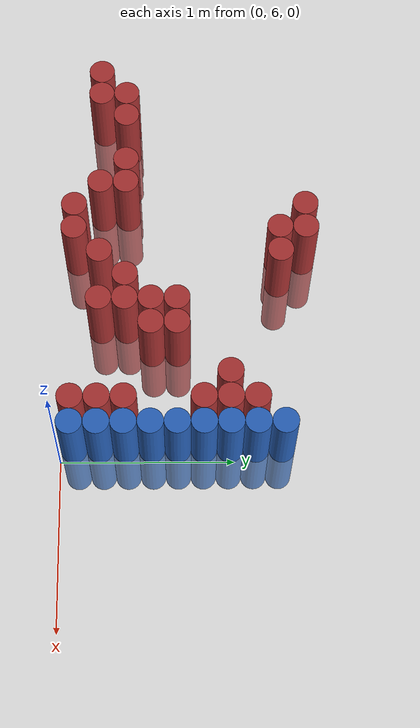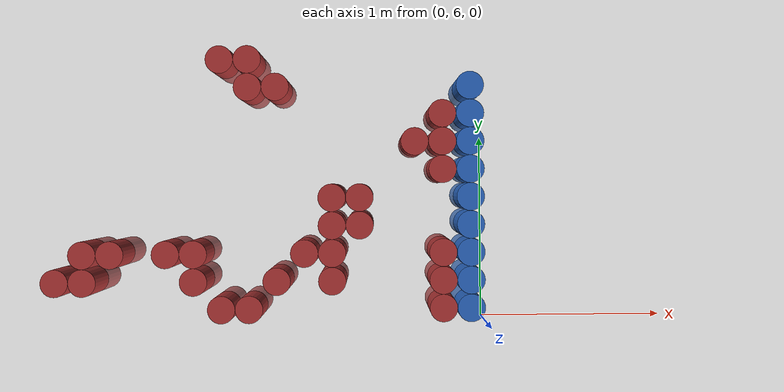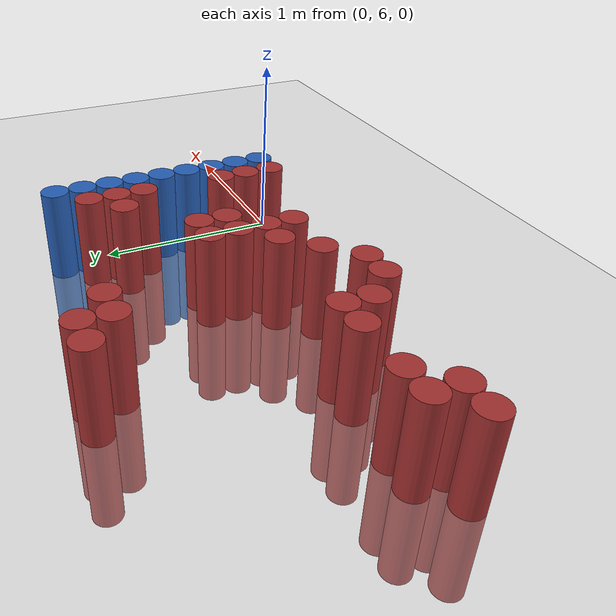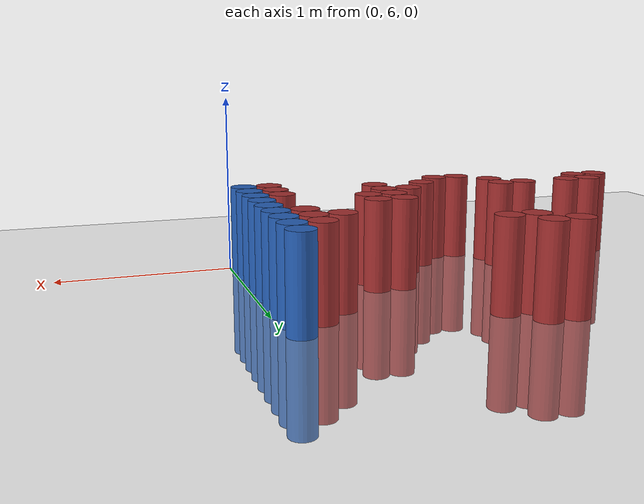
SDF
<sdf version="1.6">
 <world name="default">
  <model name="ground_plane">
   <static>1</static>
   <link name="link">
    <collision name="collision">
     <geometry><plane><normal>0 0 1</normal><size>100 100</size></plane></geometry>
     <surface><friction><ode><mu>100</mu><mu2>50</mu2></ode></friction></surface>
    </collision>
    <visual name="visual">
     <cast_shadows>0</cast_shadows>
     <geometry><plane><normal>0 0 1</normal><size>100 100</size></plane></geometry>
     <material>
      <script><uri>file://media/materials/scripts/gazebo.material</uri><name>Gazebo/Grey</name></script>
     </material>
    </visual>
   </link>
  </model>
  <model name="unit_cylinder_192">
   <static>1</static>
   <pose>-2.325000 6.225000 0.000000 0.000000 0.000000 0.000000</pose>
   <link name="link">
    <inertial>
     <mass>1</mass>
     <inertia><ixx>0.145833</ixx><ixy>0</ixy><ixz>0</ixz><iyy>0.145833</iyy><iyz>0</iyz><izz>0.125</izz></inertia>
    </inertial>
    <collision name="collision">
     <geometry><cylinder><radius>0.075000</radius><length>1</length></cylinder></geometry>
    </collision>
    <visual name="visual">
     <geometry><cylinder><radius>0.075000</radius><length>1</length></cylinder></geometry>
     <material>
      <ambient>0.648000 0.192000 0.192000 1</ambient>
      <diffuse>0.648000 0.192000 0.192000 1</diffuse>
     </material>
     <material>
      <script><name>Gazebo/Grey</name><uri>file://media/materials/scripts/gazebo.material</uri></script>
     </material>
    </visual>
    <sensor name="sensor_contact" type="contact"><contact><collision>collision</collision></contact></sensor>
   </link>
   <plugin filename="gz-sim-touchplugin-system" name="gz::sim::systems::TouchPlugin">
    <target>robot</target>
    <namespace>robot</namespace>
    <time>0.001</time>
    <enabled>true</enabled>
   </plugin>
  </model>
  <model name="unit_cylinder_198">
   <static>1</static>
   <pose>-2.175000 6.225000 0.000000 0.000000 0.000000 0.000000</pose>
   <link name="link">
    <inertial>
     <mass>1</mass>
     <inertia><ixx>0.145833</ixx><ixy>0</ixy><ixz>0</ixz><iyy>0.145833</iyy><iyz>0</iyz><izz>0.125</izz></inertia>
    </inertial>
    <collision name="collision">
     <geometry><cylinder><radius>0.075000</radius><length>1</length></cylinder></geometry>
    </collision>
    <visual name="visual">
     <geometry><cylinder><radius>0.075000</radius><length>1</length></cylinder></geometry>
     <material>
      <ambient>0.648000 0.192000 0.192000 1</ambient>
      <diffuse>0.648000 0.192000 0.192000 1</diffuse>
     </material>
     <material>
      <script><name>Gazebo/Grey</name><uri>file://media/materials/scripts/gazebo.material</uri></script>
     </material>
    </visual>
    <sensor name="sensor_contact" type="contact"><contact><collision>collision</collision></contact></sensor>
   </link>
   <plugin filename="gz-sim-touchplugin-system" name="gz::sim::systems::TouchPlugin">
    <target>robot</target>
    <namespace>robot</namespace>
    <time>0.001</time>
    <enabled>true</enabled>
   </plugin>
  </model>
  <model name="unit_cylinder_199">
   <static>1</static>
   <pose>-2.175000 6.375000 0.000000 0.000000 0.000000 0.000000</pose>
   <link name="link">
    <inertial>
     <mass>1</mass>
     <inertia><ixx>0.145833</ixx><ixy>0</ixy><ixz>0</ixz><iyy>0.145833</iyy><iyz>0</iyz><izz>0.125</izz></inertia>
    </inertial>
    <collision name="collision">
     <geometry><cylinder><radius>0.075000</radius><length>1</length></cylinder></geometry>
    </collision>
    <visual name="visual">
     <geometry><cylinder><radius>0.075000</radius><length>1</length></cylinder></geometry>
     <material>
      <ambient>0.648000 0.192000 0.192000 1</ambient>
      <diffuse>0.648000 0.192000 0.192000 1</diffuse>
     </material>
     <material>
      <script><name>Gazebo/Grey</name><uri>file://media/materials/scripts/gazebo.material</uri></script>
     </material>
    </visual>
    <sensor name="sensor_contact" type="contact"><contact><collision>collision</collision></contact></sensor>
   </link>
   <plugin filename="gz-sim-touchplugin-system" name="gz::sim::systems::TouchPlugin">
    <target>robot</target>
    <namespace>robot</namespace>
    <time>0.001</time>
    <enabled>true</enabled>
   </plugin>
  </model>
  <model name="unit_cylinder_207">
   <static>1</static>
   <pose>-2.025000 6.375000 0.000000 0.000000 0.000000 0.000000</pose>
   <link name="link">
    <inertial>
     <mass>1</mass>
     <inertia><ixx>0.145833</ixx><ixy>0</ixy><ixz>0</ixz><iyy>0.145833</iyy><iyz>0</iyz><izz>0.125</izz></inertia>
    </inertial>
    <collision name="collision">
     <geometry><cylinder><radius>0.075000</radius><length>1</length></cylinder></geometry>
    </collision>
    <visual name="visual">
     <geometry><cylinder><radius>0.075000</radius><length>1</length></cylinder></geometry>
     <material>
      <ambient>0.648000 0.192000 0.192000 1</ambient>
      <diffuse>0.648000 0.192000 0.192000 1</diffuse>
     </material>
     <material>
      <script><name>Gazebo/Grey</name><uri>file://media/materials/scripts/gazebo.material</uri></script>
     </material>
    </visual>
    <sensor name="sensor_contact" type="contact"><contact><collision>collision</collision></contact></sensor>
   </link>
   <plugin filename="gz-sim-touchplugin-system" name="gz::sim::systems::TouchPlugin">
    <target>robot</target>
    <namespace>robot</namespace>
    <time>0.001</time>
    <enabled>true</enabled>
   </plugin>
  </model>
  <model name="unit_cylinder_219">
   <static>1</static>
   <pose>-1.725000 6.375000 0.000000 0.000000 0.000000 0.000000</pose>
   <link name="link">
    <inertial>
     <mass>1</mass>
     <inertia><ixx>0.145833</ixx><ixy>0</ixy><ixz>0</ixz><iyy>0.145833</iyy><iyz>0</iyz><izz>0.125</izz></inertia>
    </inertial>
    <collision name="collision">
     <geometry><cylinder><radius>0.075000</radius><length>1</length></cylinder></geometry>
    </collision>
    <visual name="visual">
     <geometry><cylinder><radius>0.075000</radius><length>1</length></cylinder></geometry>
     <material>
      <ambient>0.648000 0.192000 0.192000 1</ambient>
      <diffuse>0.648000 0.192000 0.192000 1</diffuse>
     </material>
     <material>
      <script><name>Gazebo/Grey</name><uri>file://media/materials/scripts/gazebo.material</uri></script>
     </material>
    </visual>
    <sensor name="sensor_contact" type="contact"><contact><collision>collision</collision></contact></sensor>
   </link>
   <plugin filename="gz-sim-touchplugin-system" name="gz::sim::systems::TouchPlugin">
    <target>robot</target>
    <namespace>robot</namespace>
    <time>0.001</time>
    <enabled>true</enabled>
   </plugin>
  </model>
  <model name="unit_cylinder_223">
   <static>1</static>
   <pose>-1.575000 6.225000 0.000000 0.000000 0.000000 0.000000</pose>
   <link name="link">
    <inertial>
     <mass>1</mass>
     <inertia><ixx>0.145833</ixx><ixy>0</ixy><ixz>0</ixz><iyy>0.145833</iyy><iyz>0</iyz><izz>0.125</izz></inertia>
    </inertial>
    <collision name="collision">
     <geometry><cylinder><radius>0.075000</radius><length>1</length></cylinder></geometry>
    </collision>
    <visual name="visual">
     <geometry><cylinder><radius>0.075000</radius><length>1</length></cylinder></geometry>
     <material>
      <ambient>0.648000 0.192000 0.192000 1</ambient>
      <diffuse>0.648000 0.192000 0.192000 1</diffuse>
     </material>
     <material>
      <script><name>Gazebo/Grey</name><uri>file://media/materials/scripts/gazebo.material</uri></script>
     </material>
    </visual>
    <sensor name="sensor_contact" type="contact"><contact><collision>collision</collision></contact></sensor>
   </link>
   <plugin filename="gz-sim-touchplugin-system" name="gz::sim::systems::TouchPlugin">
    <target>robot</target>
    <namespace>robot</namespace>
    <time>0.001</time>
    <enabled>true</enabled>
   </plugin>
  </model>
  <model name="unit_cylinder_224">
   <static>1</static>
   <pose>-1.575000 6.375000 0.000000 0.000000 0.000000 0.000000</pose>
   <link name="link">
    <inertial>
     <mass>1</mass>
     <inertia><ixx>0.145833</ixx><ixy>0</ixy><ixz>0</ixz><iyy>0.145833</iyy><iyz>0</iyz><izz>0.125</izz></inertia>
    </inertial>
    <collision name="collision">
     <geometry><cylinder><radius>0.075000</radius><length>1</length></cylinder></geometry>
    </collision>
    <visual name="visual">
     <geometry><cylinder><radius>0.075000</radius><length>1</length></cylinder></geometry>
     <material>
      <ambient>0.648000 0.192000 0.192000 1</ambient>
      <diffuse>0.648000 0.192000 0.192000 1</diffuse>
     </material>
     <material>
      <script><name>Gazebo/Grey</name><uri>file://media/materials/scripts/gazebo.material</uri></script>
     </material>
    </visual>
    <sensor name="sensor_contact" type="contact"><contact><collision>collision</collision></contact></sensor>
   </link>
   <plugin filename="gz-sim-touchplugin-system" name="gz::sim::systems::TouchPlugin">
    <target>robot</target>
    <namespace>robot</namespace>
    <time>0.001</time>
    <enabled>true</enabled>
   </plugin>
  </model>
  <model name="unit_cylinder_231">
   <static>1</static>
   <pose>-1.425000 6.075000 0.000000 0.000000 0.000000 0.000000</pose>
   <link name="link">
    <inertial>
     <mass>1</mass>
     <inertia><ixx>0.145833</ixx><ixy>0</ixy><ixz>0</ixz><iyy>0.145833</iyy><iyz>0</iyz><izz>0.125</izz></inertia>
    </inertial>
    <collision name="collision">
     <geometry><cylinder><radius>0.075000</radius><length>1</length></cylinder></geometry>
    </collision>
    <visual name="visual">
     <geometry><cylinder><radius>0.075000</radius><length>1</length></cylinder></geometry>
     <material>
      <ambient>0.648000 0.192000 0.192000 1</ambient>
      <diffuse>0.648000 0.192000 0.192000 1</diffuse>
     </material>
     <material>
      <script><name>Gazebo/Grey</name><uri>file://media/materials/scripts/gazebo.material</uri></script>
     </material>
    </visual>
    <sensor name="sensor_contact" type="contact"><contact><collision>collision</collision></contact></sensor>
   </link>
   <plugin filename="gz-sim-touchplugin-system" name="gz::sim::systems::TouchPlugin">
    <target>robot</target>
    <namespace>robot</namespace>
    <time>0.001</time>
    <enabled>true</enabled>
   </plugin>
  </model>
  <model name="unit_cylinder_232">
   <static>1</static>
   <pose>-1.425000 7.425000 0.000000 0.000000 0.000000 0.000000</pose>
   <link name="link">
    <inertial>
     <mass>1</mass>
     <inertia><ixx>0.145833</ixx><ixy>0</ixy><ixz>0</ixz><iyy>0.145833</iyy><iyz>0</iyz><izz>0.125</izz></inertia>
    </inertial>
    <collision name="collision">
     <geometry><cylinder><radius>0.075000</radius><length>1</length></cylinder></geometry>
    </collision>
    <visual name="visual">
     <geometry><cylinder><radius>0.075000</radius><length>1</length></cylinder></geometry>
     <material>
      <ambient>0.648000 0.192000 0.192000 1</ambient>
      <diffuse>0.648000 0.192000 0.192000 1</diffuse>
     </material>
     <material>
      <script><name>Gazebo/Grey</name><uri>file://media/materials/scripts/gazebo.material</uri></script>
     </material>
    </visual>
    <sensor name="sensor_contact" type="contact"><contact><collision>collision</collision></contact></sensor>
   </link>
   <plugin filename="gz-sim-touchplugin-system" name="gz::sim::systems::TouchPlugin">
    <target>robot</target>
    <namespace>robot</namespace>
    <time>0.001</time>
    <enabled>true</enabled>
   </plugin>
  </model>
  <model name="unit_cylinder_236">
   <static>1</static>
   <pose>-1.275000 6.075000 0.000000 0.000000 0.000000 0.000000</pose>
   <link name="link">
    <inertial>
     <mass>1</mass>
     <inertia><ixx>0.145833</ixx><ixy>0</ixy><ixz>0</ixz><iyy>0.145833</iyy><iyz>0</iyz><izz>0.125</izz></inertia>
    </inertial>
    <collision name="collision">
     <geometry><cylinder><radius>0.075000</radius><length>1</length></cylinder></geometry>
    </collision>
    <visual name="visual">
     <geometry><cylinder><radius>0.075000</radius><length>1</length></cylinder></geometry>
     <material>
      <ambient>0.648000 0.192000 0.192000 1</ambient>
      <diffuse>0.648000 0.192000 0.192000 1</diffuse>
     </material>
     <material>
      <script><name>Gazebo/Grey</name><uri>file://media/materials/scripts/gazebo.material</uri></script>
     </material>
    </visual>
    <sensor name="sensor_contact" type="contact"><contact><collision>collision</collision></contact></sensor>
   </link>
   <plugin filename="gz-sim-touchplugin-system" name="gz::sim::systems::TouchPlugin">
    <target>robot</target>
    <namespace>robot</namespace>
    <time>0.001</time>
    <enabled>true</enabled>
   </plugin>
  </model>
  <model name="unit_cylinder_237">
   <static>1</static>
   <pose>-1.275000 7.275000 0.000000 0.000000 0.000000 0.000000</pose>
   <link name="link">
    <inertial>
     <mass>1</mass>
     <inertia><ixx>0.145833</ixx><ixy>0</ixy><ixz>0</ixz><iyy>0.145833</iyy><iyz>0</iyz><izz>0.125</izz></inertia>
    </inertial>
    <collision name="collision">
     <geometry><cylinder><radius>0.075000</radius><length>1</length></cylinder></geometry>
    </collision>
    <visual name="visual">
     <geometry><cylinder><radius>0.075000</radius><length>1</length></cylinder></geometry>
     <material>
      <ambient>0.648000 0.192000 0.192000 1</ambient>
      <diffuse>0.648000 0.192000 0.192000 1</diffuse>
     </material>
     <material>
      <script><name>Gazebo/Grey</name><uri>file://media/materials/scripts/gazebo.material</uri></script>
     </material>
    </visual>
    <sensor name="sensor_contact" type="contact"><contact><collision>collision</collision></contact></sensor>
   </link>
   <plugin filename="gz-sim-touchplugin-system" name="gz::sim::systems::TouchPlugin">
    <target>robot</target>
    <namespace>robot</namespace>
    <time>0.001</time>
    <enabled>true</enabled>
   </plugin>
  </model>
  <model name="unit_cylinder_238">
   <static>1</static>
   <pose>-1.275000 7.425000 0.000000 0.000000 0.000000 0.000000</pose>
   <link name="link">
    <inertial>
     <mass>1</mass>
     <inertia><ixx>0.145833</ixx><ixy>0</ixy><ixz>0</ixz><iyy>0.145833</iyy><iyz>0</iyz><izz>0.125</izz></inertia>
    </inertial>
    <collision name="collision">
     <geometry><cylinder><radius>0.075000</radius><length>1</length></cylinder></geometry>
    </collision>
    <visual name="visual">
     <geometry><cylinder><radius>0.075000</radius><length>1</length></cylinder></geometry>
     <material>
      <ambient>0.648000 0.192000 0.192000 1</ambient>
      <diffuse>0.648000 0.192000 0.192000 1</diffuse>
     </material>
     <material>
      <script><name>Gazebo/Grey</name><uri>file://media/materials/scripts/gazebo.material</uri></script>
     </material>
    </visual>
    <sensor name="sensor_contact" type="contact"><contact><collision>collision</collision></contact></sensor>
   </link>
   <plugin filename="gz-sim-touchplugin-system" name="gz::sim::systems::TouchPlugin">
    <target>robot</target>
    <namespace>robot</namespace>
    <time>0.001</time>
    <enabled>true</enabled>
   </plugin>
  </model>
  <model name="unit_cylinder_249">
   <static>1</static>
   <pose>-1.125000 6.225000 0.000000 0.000000 0.000000 0.000000</pose>
   <link name="link">
    <inertial>
     <mass>1</mass>
     <inertia><ixx>0.145833</ixx><ixy>0</ixy><ixz>0</ixz><iyy>0.145833</iyy><iyz>0</iyz><izz>0.125</izz></inertia>
    </inertial>
    <collision name="collision">
     <geometry><cylinder><radius>0.075000</radius><length>1</length></cylinder></geometry>
    </collision>
    <visual name="visual">
     <geometry><cylinder><radius>0.075000</radius><length>1</length></cylinder></geometry>
     <material>
      <ambient>0.648000 0.192000 0.192000 1</ambient>
      <diffuse>0.648000 0.192000 0.192000 1</diffuse>
     </material>
     <material>
      <script><name>Gazebo/Grey</name><uri>file://media/materials/scripts/gazebo.material</uri></script>
     </material>
    </visual>
    <sensor name="sensor_contact" type="contact"><contact><collision>collision</collision></contact></sensor>
   </link>
   <plugin filename="gz-sim-touchplugin-system" name="gz::sim::systems::TouchPlugin">
    <target>robot</target>
    <namespace>robot</namespace>
    <time>0.001</time>
    <enabled>true</enabled>
   </plugin>
  </model>
  <model name="unit_cylinder_250">
   <static>1</static>
   <pose>-1.125000 7.275000 0.000000 0.000000 0.000000 0.000000</pose>
   <link name="link">
    <inertial>
     <mass>1</mass>
     <inertia><ixx>0.145833</ixx><ixy>0</ixy><ixz>0</ixz><iyy>0.145833</iyy><iyz>0</iyz><izz>0.125</izz></inertia>
    </inertial>
    <collision name="collision">
     <geometry><cylinder><radius>0.075000</radius><length>1</length></cylinder></geometry>
    </collision>
    <visual name="visual">
     <geometry><cylinder><radius>0.075000</radius><length>1</length></cylinder></geometry>
     <material>
      <ambient>0.648000 0.192000 0.192000 1</ambient>
      <diffuse>0.648000 0.192000 0.192000 1</diffuse>
     </material>
     <material>
      <script><name>Gazebo/Grey</name><uri>file://media/materials/scripts/gazebo.material</uri></script>
     </material>
    </visual>
    <sensor name="sensor_contact" type="contact"><contact><collision>collision</collision></contact></sensor>
   </link>
   <plugin filename="gz-sim-touchplugin-system" name="gz::sim::systems::TouchPlugin">
    <target>robot</target>
    <namespace>robot</namespace>
    <time>0.001</time>
    <enabled>true</enabled>
   </plugin>
  </model>
  <model name="unit_cylinder_263">
   <static>1</static>
   <pose>-0.975000 6.375000 0.000000 0.000000 0.000000 0.000000</pose>
   <link name="link">
    <inertial>
     <mass>1</mass>
     <inertia><ixx>0.145833</ixx><ixy>0</ixy><ixz>0</ixz><iyy>0.145833</iyy><iyz>0</iyz><izz>0.125</izz></inertia>
    </inertial>
    <collision name="collision">
     <geometry><cylinder><radius>0.075000</radius><length>1</length></cylinder></geometry>
    </collision>
    <visual name="visual">
     <geometry><cylinder><radius>0.075000</radius><length>1</length></cylinder></geometry>
     <material>
      <ambient>0.648000 0.192000 0.192000 1</ambient>
      <diffuse>0.648000 0.192000 0.192000 1</diffuse>
     </material>
     <material>
      <script><name>Gazebo/Grey</name><uri>file://media/materials/scripts/gazebo.material</uri></script>
     </material>
    </visual>
    <sensor name="sensor_contact" type="contact"><contact><collision>collision</collision></contact></sensor>
   </link>
   <plugin filename="gz-sim-touchplugin-system" name="gz::sim::systems::TouchPlugin">
    <target>robot</target>
    <namespace>robot</namespace>
    <time>0.001</time>
    <enabled>true</enabled>
   </plugin>
  </model>
  <model name="unit_cylinder_271">
   <static>1</static>
   <pose>-0.825000 6.225000 0.000000 0.000000 0.000000 0.000000</pose>
   <link name="link">
    <inertial>
     <mass>1</mass>
     <inertia><ixx>0.145833</ixx><ixy>0</ixy><ixz>0</ixz><iyy>0.145833</iyy><iyz>0</iyz><izz>0.125</izz></inertia>
    </inertial>
    <collision name="collision">
     <geometry><cylinder><radius>0.075000</radius><length>1</length></cylinder></geometry>
    </collision>
    <visual name="visual">
     <geometry><cylinder><radius>0.075000</radius><length>1</length></cylinder></geometry>
     <material>
      <ambient>0.648000 0.192000 0.192000 1</ambient>
      <diffuse>0.648000 0.192000 0.192000 1</diffuse>
     </material>
     <material>
      <script><name>Gazebo/Grey</name><uri>file://media/materials/scripts/gazebo.material</uri></script>
     </material>
    </visual>
    <sensor name="sensor_contact" type="contact"><contact><collision>collision</collision></contact></sensor>
   </link>
   <plugin filename="gz-sim-touchplugin-system" name="gz::sim::systems::TouchPlugin">
    <target>robot</target>
    <namespace>robot</namespace>
    <time>0.001</time>
    <enabled>true</enabled>
   </plugin>
  </model>
  <model name="unit_cylinder_272">
   <static>1</static>
   <pose>-0.825000 6.375000 0.000000 0.000000 0.000000 0.000000</pose>
   <link name="link">
    <inertial>
     <mass>1</mass>
     <inertia><ixx>0.145833</ixx><ixy>0</ixy><ixz>0</ixz><iyy>0.145833</iyy><iyz>0</iyz><izz>0.125</izz></inertia>
    </inertial>
    <collision name="collision">
     <geometry><cylinder><radius>0.075000</radius><length>1</length></cylinder></geometry>
    </collision>
    <visual name="visual">
     <geometry><cylinder><radius>0.075000</radius><length>1</length></cylinder></geometry>
     <material>
      <ambient>0.648000 0.192000 0.192000 1</ambient>
      <diffuse>0.648000 0.192000 0.192000 1</diffuse>
     </material>
     <material>
      <script><name>Gazebo/Grey</name><uri>file://media/materials/scripts/gazebo.material</uri></script>
     </material>
    </visual>
    <sensor name="sensor_contact" type="contact"><contact><collision>collision</collision></contact></sensor>
   </link>
   <plugin filename="gz-sim-touchplugin-system" name="gz::sim::systems::TouchPlugin">
    <target>robot</target>
    <namespace>robot</namespace>
    <time>0.001</time>
    <enabled>true</enabled>
   </plugin>
  </model>
  <model name="unit_cylinder_273">
   <static>1</static>
   <pose>-0.825000 6.525000 0.000000 0.000000 0.000000 0.000000</pose>
   <link name="link">
    <inertial>
     <mass>1</mass>
     <inertia><ixx>0.145833</ixx><ixy>0</ixy><ixz>0</ixz><iyy>0.145833</iyy><iyz>0</iyz><izz>0.125</izz></inertia>
    </inertial>
    <collision name="collision">
     <geometry><cylinder><radius>0.075000</radius><length>1</length></cylinder></geometry>
    </collision>
    <visual name="visual">
     <geometry><cylinder><radius>0.075000</radius><length>1</length></cylinder></geometry>
     <material>
      <ambient>0.648000 0.192000 0.192000 1</ambient>
      <diffuse>0.648000 0.192000 0.192000 1</diffuse>
     </material>
     <material>
      <script><name>Gazebo/Grey</name><uri>file://media/materials/scripts/gazebo.material</uri></script>
     </material>
    </visual>
    <sensor name="sensor_contact" type="contact"><contact><collision>collision</collision></contact></sensor>
   </link>
   <plugin filename="gz-sim-touchplugin-system" name="gz::sim::systems::TouchPlugin">
    <target>robot</target>
    <namespace>robot</namespace>
    <time>0.001</time>
    <enabled>true</enabled>
   </plugin>
  </model>
  <model name="unit_cylinder_274">
   <static>1</static>
   <pose>-0.825000 6.675000 0.000000 0.000000 0.000000 0.000000</pose>
   <link name="link">
    <inertial>
     <mass>1</mass>
     <inertia><ixx>0.145833</ixx><ixy>0</ixy><ixz>0</ixz><iyy>0.145833</iyy><iyz>0</iyz><izz>0.125</izz></inertia>
    </inertial>
    <collision name="collision">
     <geometry><cylinder><radius>0.075000</radius><length>1</length></cylinder></geometry>
    </collision>
    <visual name="visual">
     <geometry><cylinder><radius>0.075000</radius><length>1</length></cylinder></geometry>
     <material>
      <ambient>0.648000 0.192000 0.192000 1</ambient>
      <diffuse>0.648000 0.192000 0.192000 1</diffuse>
     </material>
     <material>
      <script><name>Gazebo/Grey</name><uri>file://media/materials/scripts/gazebo.material</uri></script>
     </material>
    </visual>
    <sensor name="sensor_contact" type="contact"><contact><collision>collision</collision></contact></sensor>
   </link>
   <plugin filename="gz-sim-touchplugin-system" name="gz::sim::systems::TouchPlugin">
    <target>robot</target>
    <namespace>robot</namespace>
    <time>0.001</time>
    <enabled>true</enabled>
   </plugin>
  </model>
  <model name="unit_cylinder_277">
   <static>1</static>
   <pose>-0.675000 6.525000 0.000000 0.000000 0.000000 0.000000</pose>
   <link name="link">
    <inertial>
     <mass>1</mass>
     <inertia><ixx>0.145833</ixx><ixy>0</ixy><ixz>0</ixz><iyy>0.145833</iyy><iyz>0</iyz><izz>0.125</izz></inertia>
    </inertial>
    <collision name="collision">
     <geometry><cylinder><radius>0.075000</radius><length>1</length></cylinder></geometry>
    </collision>
    <visual name="visual">
     <geometry><cylinder><radius>0.075000</radius><length>1</length></cylinder></geometry>
     <material>
      <ambient>0.648000 0.192000 0.192000 1</ambient>
      <diffuse>0.648000 0.192000 0.192000 1</diffuse>
     </material>
     <material>
      <script><name>Gazebo/Grey</name><uri>file://media/materials/scripts/gazebo.material</uri></script>
     </material>
    </visual>
    <sensor name="sensor_contact" type="contact"><contact><collision>collision</collision></contact></sensor>
   </link>
   <plugin filename="gz-sim-touchplugin-system" name="gz::sim::systems::TouchPlugin">
    <target>robot</target>
    <namespace>robot</namespace>
    <time>0.001</time>
    <enabled>true</enabled>
   </plugin>
  </model>
  <model name="unit_cylinder_278">
   <static>1</static>
   <pose>-0.675000 6.675000 0.000000 0.000000 0.000000 0.000000</pose>
   <link name="link">
    <inertial>
     <mass>1</mass>
     <inertia><ixx>0.145833</ixx><ixy>0</ixy><ixz>0</ixz><iyy>0.145833</iyy><iyz>0</iyz><izz>0.125</izz></inertia>
    </inertial>
    <collision name="collision">
     <geometry><cylinder><radius>0.075000</radius><length>1</length></cylinder></geometry>
    </collision>
    <visual name="visual">
     <geometry><cylinder><radius>0.075000</radius><length>1</length></cylinder></geometry>
     <material>
      <ambient>0.648000 0.192000 0.192000 1</ambient>
      <diffuse>0.648000 0.192000 0.192000 1</diffuse>
     </material>
     <material>
      <script><name>Gazebo/Grey</name><uri>file://media/materials/scripts/gazebo.material</uri></script>
     </material>
    </visual>
    <sensor name="sensor_contact" type="contact"><contact><collision>collision</collision></contact></sensor>
   </link>
   <plugin filename="gz-sim-touchplugin-system" name="gz::sim::systems::TouchPlugin">
    <target>robot</target>
    <namespace>robot</namespace>
    <time>0.001</time>
    <enabled>true</enabled>
   </plugin>
  </model>
  <model name="unit_cylinder_281">
   <static>1</static>
   <pose>-0.375000 6.975000 0.000000 0.000000 0.000000 0.000000</pose>
   <link name="link">
    <inertial>
     <mass>1</mass>
     <inertia><ixx>0.145833</ixx><ixy>0</ixy><ixz>0</ixz><iyy>0.145833</iyy><iyz>0</iyz><izz>0.125</izz></inertia>
    </inertial>
    <collision name="collision">
     <geometry><cylinder><radius>0.075000</radius><length>1</length></cylinder></geometry>
    </collision>
    <visual name="visual">
     <geometry><cylinder><radius>0.075000</radius><length>1</length></cylinder></geometry>
     <material>
      <ambient>0.648000 0.192000 0.192000 1</ambient>
      <diffuse>0.648000 0.192000 0.192000 1</diffuse>
     </material>
     <material>
      <script><name>Gazebo/Grey</name><uri>file://media/materials/scripts/gazebo.material</uri></script>
     </material>
    </visual>
    <sensor name="sensor_contact" type="contact"><contact><collision>collision</collision></contact></sensor>
   </link>
   <plugin filename="gz-sim-touchplugin-system" name="gz::sim::systems::TouchPlugin">
    <target>robot</target>
    <namespace>robot</namespace>
    <time>0.001</time>
    <enabled>true</enabled>
   </plugin>
  </model>
  <model name="unit_cylinder_291">
   <static>1</static>
   <pose>-0.225000 6.075000 0.000000 0.000000 0.000000 0.000000</pose>
   <link name="link">
    <inertial>
     <mass>1</mass>
     <inertia><ixx>0.145833</ixx><ixy>0</ixy><ixz>0</ixz><iyy>0.145833</iyy><iyz>0</iyz><izz>0.125</izz></inertia>
    </inertial>
    <collision name="collision">
     <geometry><cylinder><radius>0.075000</radius><length>1</length></cylinder></geometry>
    </collision>
    <visual name="visual">
     <geometry><cylinder><radius>0.075000</radius><length>1</length></cylinder></geometry>
     <material>
      <ambient>0.648000 0.192000 0.192000 1</ambient>
      <diffuse>0.648000 0.192000 0.192000 1</diffuse>
     </material>
     <material>
      <script><name>Gazebo/Grey</name><uri>file://media/materials/scripts/gazebo.material</uri></script>
     </material>
    </visual>
    <sensor name="sensor_contact" type="contact"><contact><collision>collision</collision></contact></sensor>
   </link>
   <plugin filename="gz-sim-touchplugin-system" name="gz::sim::systems::TouchPlugin">
    <target>robot</target>
    <namespace>robot</namespace>
    <time>0.001</time>
    <enabled>true</enabled>
   </plugin>
  </model>
  <model name="unit_cylinder_292">
   <static>1</static>
   <pose>-0.225000 6.225000 0.000000 0.000000 0.000000 0.000000</pose>
   <link name="link">
    <inertial>
     <mass>1</mass>
     <inertia><ixx>0.145833</ixx><ixy>0</ixy><ixz>0</ixz><iyy>0.145833</iyy><iyz>0</iyz><izz>0.125</izz></inertia>
    </inertial>
    <collision name="collision">
     <geometry><cylinder><radius>0.075000</radius><length>1</length></cylinder></geometry>
    </collision>
    <visual name="visual">
     <geometry><cylinder><radius>0.075000</radius><length>1</length></cylinder></geometry>
     <material>
      <ambient>0.648000 0.192000 0.192000 1</ambient>
      <diffuse>0.648000 0.192000 0.192000 1</diffuse>
     </material>
     <material>
      <script><name>Gazebo/Grey</name><uri>file://media/materials/scripts/gazebo.material</uri></script>
     </material>
    </visual>
    <sensor name="sensor_contact" type="contact"><contact><collision>collision</collision></contact></sensor>
   </link>
   <plugin filename="gz-sim-touchplugin-system" name="gz::sim::systems::TouchPlugin">
    <target>robot</target>
    <namespace>robot</namespace>
    <time>0.001</time>
    <enabled>true</enabled>
   </plugin>
  </model>
  <model name="unit_cylinder_293">
   <static>1</static>
   <pose>-0.225000 6.375000 0.000000 0.000000 0.000000 0.000000</pose>
   <link name="link">
    <inertial>
     <mass>1</mass>
     <inertia><ixx>0.145833</ixx><ixy>0</ixy><ixz>0</ixz><iyy>0.145833</iyy><iyz>0</iyz><izz>0.125</izz></inertia>
    </inertial>
    <collision name="collision">
     <geometry><cylinder><radius>0.075000</radius><length>1</length></cylinder></geometry>
    </collision>
    <visual name="visual">
     <geometry><cylinder><radius>0.075000</radius><length>1</length></cylinder></geometry>
     <material>
      <ambient>0.648000 0.192000 0.192000 1</ambient>
      <diffuse>0.648000 0.192000 0.192000 1</diffuse>
     </material>
     <material>
      <script><name>Gazebo/Grey</name><uri>file://media/materials/scripts/gazebo.material</uri></script>
     </material>
    </visual>
    <sensor name="sensor_contact" type="contact"><contact><collision>collision</collision></contact></sensor>
   </link>
   <plugin filename="gz-sim-touchplugin-system" name="gz::sim::systems::TouchPlugin">
    <target>robot</target>
    <namespace>robot</namespace>
    <time>0.001</time>
    <enabled>true</enabled>
   </plugin>
  </model>
  <model name="unit_cylinder_294">
   <static>1</static>
   <pose>-0.225000 6.825000 0.000000 0.000000 0.000000 0.000000</pose>
   <link name="link">
    <inertial>
     <mass>1</mass>
     <inertia><ixx>0.145833</ixx><ixy>0</ixy><ixz>0</ixz><iyy>0.145833</iyy><iyz>0</iyz><izz>0.125</izz></inertia>
    </inertial>
    <collision name="collision">
     <geometry><cylinder><radius>0.075000</radius><length>1</length></cylinder></geometry>
    </collision>
    <visual name="visual">
     <geometry><cylinder><radius>0.075000</radius><length>1</length></cylinder></geometry>
     <material>
      <ambient>0.648000 0.192000 0.192000 1</ambient>
      <diffuse>0.648000 0.192000 0.192000 1</diffuse>
     </material>
     <material>
      <script><name>Gazebo/Grey</name><uri>file://media/materials/scripts/gazebo.material</uri></script>
     </material>
    </visual>
    <sensor name="sensor_contact" type="contact"><contact><collision>collision</collision></contact></sensor>
   </link>
   <plugin filename="gz-sim-touchplugin-system" name="gz::sim::systems::TouchPlugin">
    <target>robot</target>
    <namespace>robot</namespace>
    <time>0.001</time>
    <enabled>true</enabled>
   </plugin>
  </model>
  <model name="unit_cylinder_295">
   <static>1</static>
   <pose>-0.225000 6.975000 0.000000 0.000000 0.000000 0.000000</pose>
   <link name="link">
    <inertial>
     <mass>1</mass>
     <inertia><ixx>0.145833</ixx><ixy>0</ixy><ixz>0</ixz><iyy>0.145833</iyy><iyz>0</iyz><izz>0.125</izz></inertia>
    </inertial>
    <collision name="collision">
     <geometry><cylinder><radius>0.075000</radius><length>1</length></cylinder></geometry>
    </collision>
    <visual name="visual">
     <geometry><cylinder><radius>0.075000</radius><length>1</length></cylinder></geometry>
     <material>
      <ambient>0.648000 0.192000 0.192000 1</ambient>
      <diffuse>0.648000 0.192000 0.192000 1</diffuse>
     </material>
     <material>
      <script><name>Gazebo/Grey</name><uri>file://media/materials/scripts/gazebo.material</uri></script>
     </material>
    </visual>
    <sensor name="sensor_contact" type="contact"><contact><collision>collision</collision></contact></sensor>
   </link>
   <plugin filename="gz-sim-touchplugin-system" name="gz::sim::systems::TouchPlugin">
    <target>robot</target>
    <namespace>robot</namespace>
    <time>0.001</time>
    <enabled>true</enabled>
   </plugin>
  </model>
  <model name="unit_cylinder_296">
   <static>1</static>
   <pose>-0.225000 7.125000 0.000000 0.000000 0.000000 0.000000</pose>
   <link name="link">
    <inertial>
     <mass>1</mass>
     <inertia><ixx>0.145833</ixx><ixy>0</ixy><ixz>0</ixz><iyy>0.145833</iyy><iyz>0</iyz><izz>0.125</izz></inertia>
    </inertial>
    <collision name="collision">
     <geometry><cylinder><radius>0.075000</radius><length>1</length></cylinder></geometry>
    </collision>
    <visual name="visual">
     <geometry><cylinder><radius>0.075000</radius><length>1</length></cylinder></geometry>
     <material>
      <ambient>0.648000 0.192000 0.192000 1</ambient>
      <diffuse>0.648000 0.192000 0.192000 1</diffuse>
     </material>
     <material>
      <script><name>Gazebo/Grey</name><uri>file://media/materials/scripts/gazebo.material</uri></script>
     </material>
    </visual>
    <sensor name="sensor_contact" type="contact"><contact><collision>collision</collision></contact></sensor>
   </link>
   <plugin filename="gz-sim-touchplugin-system" name="gz::sim::systems::TouchPlugin">
    <target>robot</target>
    <namespace>robot</namespace>
    <time>0.001</time>
    <enabled>true</enabled>
   </plugin>
  </model>
  <model name="unit_cylinder_312">
   <static>1</static>
   <pose>-0.075000 6.075000 0.000000 0.000000 0.000000 0.000000</pose>
   <link name="link">
    <inertial>
     <mass>1</mass>
     <inertia><ixx>0.145833</ixx><ixy>0</ixy><ixz>0</ixz><iyy>0.145833</iyy><iyz>0</iyz><izz>0.125</izz></inertia>
    </inertial>
    <collision name="collision">
     <geometry><cylinder><radius>0.075000</radius><length>1</length></cylinder></geometry>
    </collision>
    <visual name="visual">
     <geometry><cylinder><radius>0.075000</radius><length>1</length></cylinder></geometry>
     <material>
      <ambient>0.152000 0.379000 0.720000 1</ambient>
      <diffuse>0.152000 0.379000 0.720000 1</diffuse>
     </material>
     <material>
      <script><name>Gazebo/Grey</name><uri>file://media/materials/scripts/gazebo.material</uri></script>
     </material>
    </visual>
    <sensor name="sensor_contact" type="contact"><contact><collision>collision</collision></contact></sensor>
   </link>
   <plugin filename="gz-sim-touchplugin-system" name="gz::sim::systems::TouchPlugin">
    <target>robot</target>
    <namespace>robot</namespace>
    <time>0.001</time>
    <enabled>true</enabled>
   </plugin>
  </model>
  <model name="unit_cylinder_313">
   <static>1</static>
   <pose>-0.075000 6.225000 0.000000 0.000000 0.000000 0.000000</pose>
   <link name="link">
    <inertial>
     <mass>1</mass>
     <inertia><ixx>0.145833</ixx><ixy>0</ixy><ixz>0</ixz><iyy>0.145833</iyy><iyz>0</iyz><izz>0.125</izz></inertia>
    </inertial>
    <collision name="collision">
     <geometry><cylinder><radius>0.075000</radius><length>1</length></cylinder></geometry>
    </collision>
    <visual name="visual">
     <geometry><cylinder><radius>0.075000</radius><length>1</length></cylinder></geometry>
     <material>
      <ambient>0.152000 0.379000 0.720000 1</ambient>
      <diffuse>0.152000 0.379000 0.720000 1</diffuse>
     </material>
     <material>
      <script><name>Gazebo/Grey</name><uri>file://media/materials/scripts/gazebo.material</uri></script>
     </material>
    </visual>
    <sensor name="sensor_contact" type="contact"><contact><collision>collision</collision></contact></sensor>
   </link>
   <plugin filename="gz-sim-touchplugin-system" name="gz::sim::systems::TouchPlugin">
    <target>robot</target>
    <namespace>robot</namespace>
    <time>0.001</time>
    <enabled>true</enabled>
   </plugin>
  </model>
  <model name="unit_cylinder_314">
   <static>1</static>
   <pose>-0.075000 6.375000 0.000000 0.000000 0.000000 0.000000</pose>
   <link name="link">
    <inertial>
     <mass>1</mass>
     <inertia><ixx>0.145833</ixx><ixy>0</ixy><ixz>0</ixz><iyy>0.145833</iyy><iyz>0</iyz><izz>0.125</izz></inertia>
    </inertial>
    <collision name="collision">
     <geometry><cylinder><radius>0.075000</radius><length>1</length></cylinder></geometry>
    </collision>
    <visual name="visual">
     <geometry><cylinder><radius>0.075000</radius><length>1</length></cylinder></geometry>
     <material>
      <ambient>0.152000 0.379000 0.720000 1</ambient>
      <diffuse>0.152000 0.379000 0.720000 1</diffuse>
     </material>
     <material>
      <script><name>Gazebo/Grey</name><uri>file://media/materials/scripts/gazebo.material</uri></script>
     </material>
    </visual>
    <sensor name="sensor_contact" type="contact"><contact><collision>collision</collision></contact></sensor>
   </link>
   <plugin filename="gz-sim-touchplugin-system" name="gz::sim::systems::TouchPlugin">
    <target>robot</target>
    <namespace>robot</namespace>
    <time>0.001</time>
    <enabled>true</enabled>
   </plugin>
  </model>
  <model name="unit_cylinder_315">
   <static>1</static>
   <pose>-0.075000 6.525000 0.000000 0.000000 0.000000 0.000000</pose>
   <link name="link">
    <inertial>
     <mass>1</mass>
     <inertia><ixx>0.145833</ixx><ixy>0</ixy><ixz>0</ixz><iyy>0.145833</iyy><iyz>0</iyz><izz>0.125</izz></inertia>
    </inertial>
    <collision name="collision">
     <geometry><cylinder><radius>0.075000</radius><length>1</length></cylinder></geometry>
    </collision>
    <visual name="visual">
     <geometry><cylinder><radius>0.075000</radius><length>1</length></cylinder></geometry>
     <material>
      <ambient>0.152000 0.379000 0.720000 1</ambient>
      <diffuse>0.152000 0.379000 0.720000 1</diffuse>
     </material>
     <material>
      <script><name>Gazebo/Grey</name><uri>file://media/materials/scripts/gazebo.material</uri></script>
     </material>
    </visual>
    <sensor name="sensor_contact" type="contact"><contact><collision>collision</collision></contact></sensor>
   </link>
   <plugin filename="gz-sim-touchplugin-system" name="gz::sim::systems::TouchPlugin">
    <target>robot</target>
    <namespace>robot</namespace>
    <time>0.001</time>
    <enabled>true</enabled>
   </plugin>
  </model>
  <model name="unit_cylinder_316">
   <static>1</static>
   <pose>-0.075000 6.675000 0.000000 0.000000 0.000000 0.000000</pose>
   <link name="link">
    <inertial>
     <mass>1</mass>
     <inertia><ixx>0.145833</ixx><ixy>0</ixy><ixz>0</ixz><iyy>0.145833</iyy><iyz>0</iyz><izz>0.125</izz></inertia>
    </inertial>
    <collision name="collision">
     <geometry><cylinder><radius>0.075000</radius><length>1</length></cylinder></geometry>
    </collision>
    <visual name="visual">
     <geometry><cylinder><radius>0.075000</radius><length>1</length></cylinder></geometry>
     <material>
      <ambient>0.152000 0.379000 0.720000 1</ambient>
      <diffuse>0.152000 0.379000 0.720000 1</diffuse>
     </material>
     <material>
      <script><name>Gazebo/Grey</name><uri>file://media/materials/scripts/gazebo.material</uri></script>
     </material>
    </visual>
    <sensor name="sensor_contact" type="contact"><contact><collision>collision</collision></contact></sensor>
   </link>
   <plugin filename="gz-sim-touchplugin-system" name="gz::sim::systems::TouchPlugin">
    <target>robot</target>
    <namespace>robot</namespace>
    <time>0.001</time>
    <enabled>true</enabled>
   </plugin>
  </model>
  <model name="unit_cylinder_317">
   <static>1</static>
   <pose>-0.075000 6.825000 0.000000 0.000000 0.000000 0.000000</pose>
   <link name="link">
    <inertial>
     <mass>1</mass>
     <inertia><ixx>0.145833</ixx><ixy>0</ixy><ixz>0</ixz><iyy>0.145833</iyy><iyz>0</iyz><izz>0.125</izz></inertia>
    </inertial>
    <collision name="collision">
     <geometry><cylinder><radius>0.075000</radius><length>1</length></cylinder></geometry>
    </collision>
    <visual name="visual">
     <geometry><cylinder><radius>0.075000</radius><length>1</length></cylinder></geometry>
     <material>
      <ambient>0.152000 0.379000 0.720000 1</ambient>
      <diffuse>0.152000 0.379000 0.720000 1</diffuse>
     </material>
     <material>
      <script><name>Gazebo/Grey</name><uri>file://media/materials/scripts/gazebo.material</uri></script>
     </material>
    </visual>
    <sensor name="sensor_contact" type="contact"><contact><collision>collision</collision></contact></sensor>
   </link>
   <plugin filename="gz-sim-touchplugin-system" name="gz::sim::systems::TouchPlugin">
    <target>robot</target>
    <namespace>robot</namespace>
    <time>0.001</time>
    <enabled>true</enabled>
   </plugin>
  </model>
  <model name="unit_cylinder_318">
   <static>1</static>
   <pose>-0.075000 6.975000 0.000000 0.000000 0.000000 0.000000</pose>
   <link name="link">
    <inertial>
     <mass>1</mass>
     <inertia><ixx>0.145833</ixx><ixy>0</ixy><ixz>0</ixz><iyy>0.145833</iyy><iyz>0</iyz><izz>0.125</izz></inertia>
    </inertial>
    <collision name="collision">
     <geometry><cylinder><radius>0.075000</radius><length>1</length></cylinder></geometry>
    </collision>
    <visual name="visual">
     <geometry><cylinder><radius>0.075000</radius><length>1</length></cylinder></geometry>
     <material>
      <ambient>0.152000 0.379000 0.720000 1</ambient>
      <diffuse>0.152000 0.379000 0.720000 1</diffuse>
     </material>
     <material>
      <script><name>Gazebo/Grey</name><uri>file://media/materials/scripts/gazebo.material</uri></script>
     </material>
    </visual>
    <sensor name="sensor_contact" type="contact"><contact><collision>collision</collision></contact></sensor>
   </link>
   <plugin filename="gz-sim-touchplugin-system" name="gz::sim::systems::TouchPlugin">
    <target>robot</target>
    <namespace>robot</namespace>
    <time>0.001</time>
    <enabled>true</enabled>
   </plugin>
  </model>
  <model name="unit_cylinder_319">
   <static>1</static>
   <pose>-0.075000 7.125000 0.000000 0.000000 0.000000 0.000000</pose>
   <link name="link">
    <inertial>
     <mass>1</mass>
     <inertia><ixx>0.145833</ixx><ixy>0</ixy><ixz>0</ixz><iyy>0.145833</iyy><iyz>0</iyz><izz>0.125</izz></inertia>
    </inertial>
    <collision name="collision">
     <geometry><cylinder><radius>0.075000</radius><length>1</length></cylinder></geometry>
    </collision>
    <visual name="visual">
     <geometry><cylinder><radius>0.075000</radius><length>1</length></cylinder></geometry>
     <material>
      <ambient>0.152000 0.379000 0.720000 1</ambient>
      <diffuse>0.152000 0.379000 0.720000 1</diffuse>
     </material>
     <material>
      <script><name>Gazebo/Grey</name><uri>file://media/materials/scripts/gazebo.material</uri></script>
     </material>
    </visual>
    <sensor name="sensor_contact" type="contact"><contact><collision>collision</collision></contact></sensor>
   </link>
   <plugin filename="gz-sim-touchplugin-system" name="gz::sim::systems::TouchPlugin">
    <target>robot</target>
    <namespace>robot</namespace>
    <time>0.001</time>
    <enabled>true</enabled>
   </plugin>
  </model>
  <model name="unit_cylinder_320">
   <static>1</static>
   <pose>-0.075000 7.275000 0.000000 0.000000 0.000000 0.000000</pose>
   <link name="link">
    <inertial>
     <mass>1</mass>
     <inertia><ixx>0.145833</ixx><ixy>0</ixy><ixz>0</ixz><iyy>0.145833</iyy><iyz>0</iyz><izz>0.125</izz></inertia>
    </inertial>
    <collision name="collision">
     <geometry><cylinder><radius>0.075000</radius><length>1</length></cylinder></geometry>
    </collision>
    <visual name="visual">
     <geometry><cylinder><radius>0.075000</radius><length>1</length></cylinder></geometry>
     <material>
      <ambient>0.152000 0.379000 0.720000 1</ambient>
      <diffuse>0.152000 0.379000 0.720000 1</diffuse>
     </material>
     <material>
      <script><name>Gazebo/Grey</name><uri>file://media/materials/scripts/gazebo.material</uri></script>
     </material>
    </visual>
    <sensor name="sensor_contact" type="contact"><contact><collision>collision</collision></contact></sensor>
   </link>
   <plugin filename="gz-sim-touchplugin-system" name="gz::sim::systems::TouchPlugin">
    <target>robot</target>
    <namespace>robot</namespace>
    <time>0.001</time>
    <enabled>true</enabled>
   </plugin>
  </model>
 </world>
</sdf>
